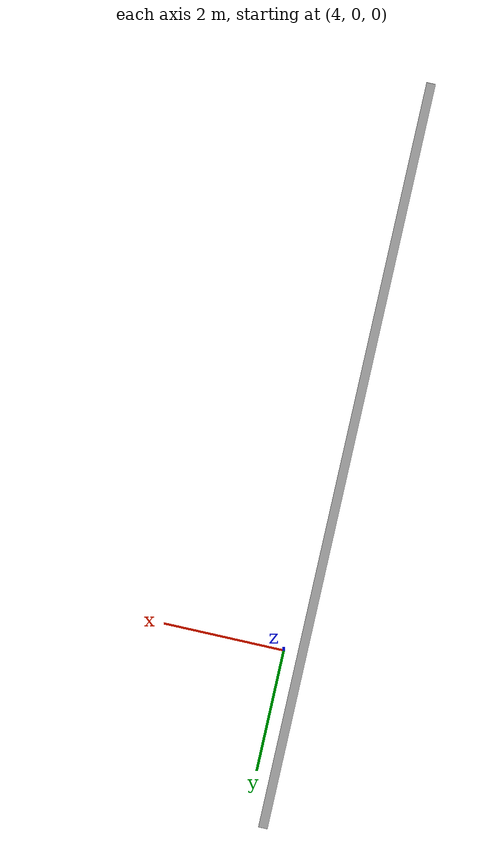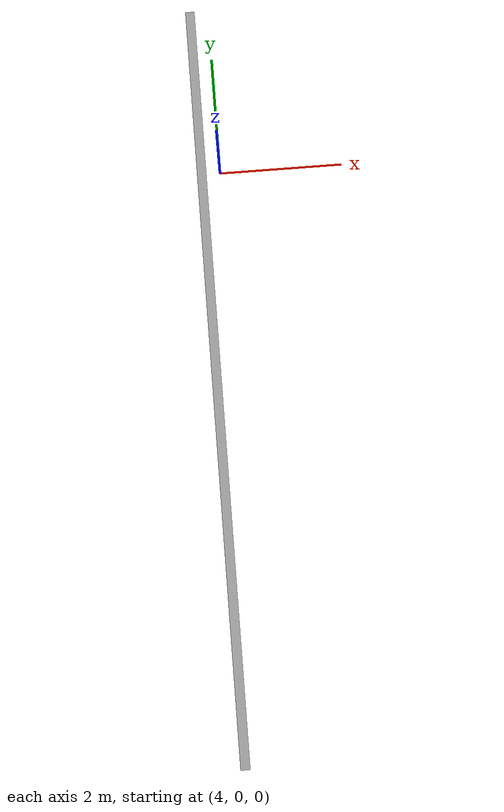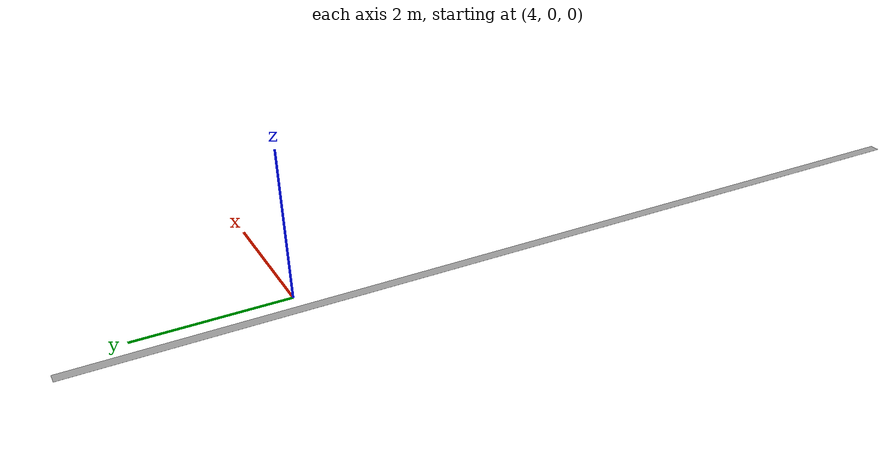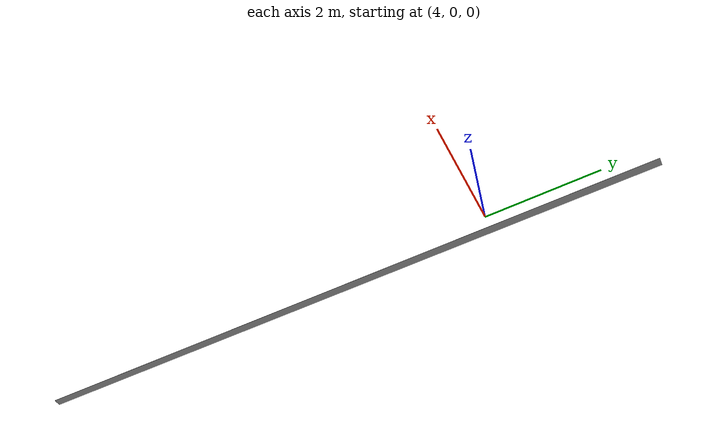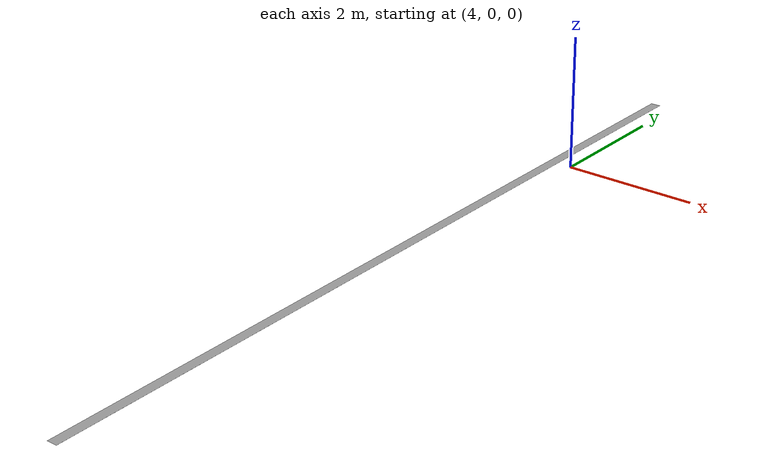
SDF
<?xml version='1.0'?>
<sdf version='1.6'>
  <model name='add1'>
    <pose frame=''>3.699 -3.367 0 0 -0 0</pose>
    <link name='Wall_4'>
      <collision name='Wall_4_Collision'>
        <geometry>
          <box>
            <size>12.5 0.15 0.001</size>
          </box>
        </geometry>
        <pose frame=''>0 0 0.0005 0 -0 0</pose>
      </collision>
      <visual name='Wall_4_Visual'>
        <pose frame=''>0 0 0.0005 0 -0 0</pose>
        <geometry>
          <box>
            <size>12.5 0.15 0.001</size>
          </box>
        </geometry>
        <material>
          <script>
            <uri>file://media/materials/scripts/gazebo.material</uri>
            <name>Gazebo/Grey</name>
          </script>
          <ambient>1 1 1 1</ambient>
        </material>
        <meta>
          <layer>0</layer>
        </meta>
      </visual>
      <pose frame=''>0 -0 0 0 -0 -1.5708</pose>
    </link>
    <static>1</static>
  </model>
</sdf>
